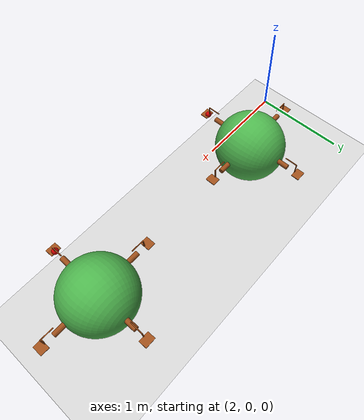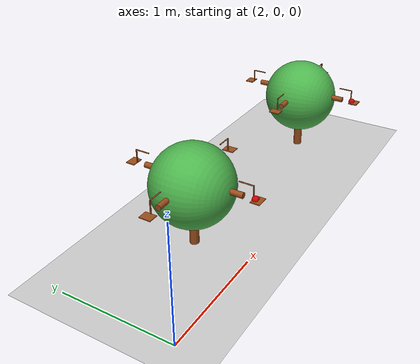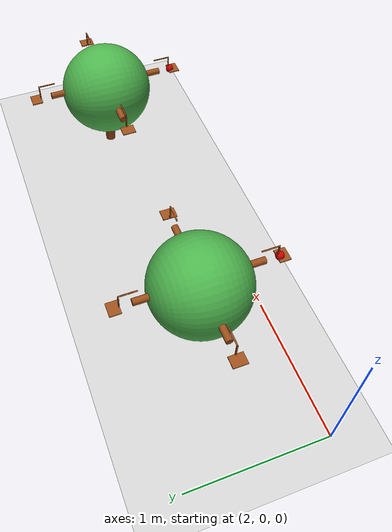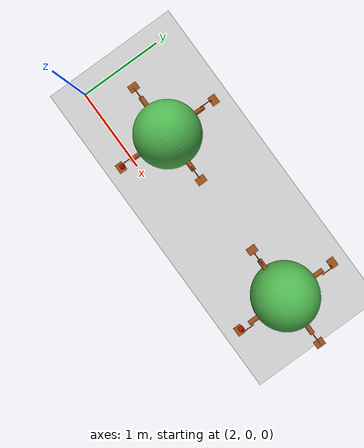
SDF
<sdf version="1.7">
 <world name="default">
  <light name="sun" type="directional">
   <pose>0 0 10 0 -0 0</pose>
   <diffuse>0.8 0.8 0.8 1</diffuse>
   <specular>0.2 0.2 0.2 1</specular>
   <attenuation>
    <range>1000</range>
    <constant>0.9</constant>
    <linear>0.01</linear>
    <quadratic>0.001</quadratic>
   </attenuation>
   <direction>-0.5 0.1 -0.9</direction>
   <spot><inner_angle>0</inner_angle><outer_angle>0</outer_angle><falloff>0</falloff></spot>
  </light>
  <model name="ground_plane">
   <static>1</static>
   <link name="link">
    <collision name="collision">
     <geometry><plane><normal>0 0 1</normal><size>100 100</size></plane></geometry>
     <surface><friction><ode><mu>100</mu><mu2>50</mu2></ode></friction></surface>
    </collision>
    <visual name="visual">
     <cast_shadows>0</cast_shadows>
     <geometry><plane><normal>0 0 1</normal><size>100 100</size></plane></geometry>
     <material>
      <script><uri>file://media/materials/scripts/gazebo.material</uri><name>Gazebo/Grey</name></script>
     </material>
    </visual>
   </link>
  </model>
  <gravity>0 0 -9.8</gravity>
  <magnetic_field>6e-06 2.3e-05 -4.2e-05</magnetic_field>
  <atmosphere type="adiabatic"/>
  <physics type="ode">
   <max_step_size>0.001</max_step_size>
   <real_time_factor>1</real_time_factor>
   <real_time_update_rate>1000</real_time_update_rate>
  </physics>
  <scene><ambient>0.4 0.4 0.4 1</ambient><background>0.7 0.7 0.7 1</background><shadows>1</shadows></scene>
  <spherical_coordinates>
   <surface_model>EARTH_WGS84</surface_model>
   <latitude_deg>0</latitude_deg>
   <longitude_deg>0</longitude_deg>
   <elevation>0</elevation>
   <heading_deg>0</heading_deg>
  </spherical_coordinates>
  <model name="tree_body_1">
   <static>1</static>
   <link name="base_link">
    <inertial>
     <pose>0 -0 0.471764 0 -0 0</pose>
     <mass>1.19801</mass>
     <inertia>
      <ixx>0.0425808</ixx>
      <ixy>1.32721e-16</ixy>
      <ixz>-1.63924e-09</ixz>
      <iyy>0.0425808</iyy>
      <iyz>-1.70022e-09</iyz>
      <izz>0.0498619</izz>
     </inertia>
    </inertial>
    <collision name="base_link_collision">
     <geometry><mesh><scale>1 1 1</scale><uri>model://tree_body/meshes/base_link.STL</uri></mesh></geometry>
    </collision>
    <collision name="base_link_fixed_joint_lump__branch1_collision_1">
     <pose>0 -0.57 0.6 1.5708 -0 0</pose>
     <geometry><mesh><scale>1 1 1</scale><uri>model://tree_body/meshes/branch1.STL</uri></mesh></geometry>
    </collision>
    <collision name="base_link_fixed_joint_lump__branch2_collision_2">
     <pose>0.57 0 0.6 1.5708 -0 1.5708</pose>
     <geometry><mesh><scale>1 1 1</scale><uri>model://tree_body/meshes/branch2.STL</uri></mesh></geometry>
    </collision>
    <collision name="base_link_fixed_joint_lump__branch3_collision_3">
     <pose>0 0.57 0.6 1.5708 -0 -3.14159</pose>
     <geometry><mesh><scale>1 1 1</scale><uri>model://tree_body/meshes/branch3.STL</uri></mesh></geometry>
    </collision>
    <collision name="base_link_fixed_joint_lump__branch4_collision_4">
     <pose>-0.57 0 0.6 1.5708 0 -1.5708</pose>
     <geometry><mesh><scale>1 1 1</scale><uri>model://tree_body/meshes/branch4.STL</uri></mesh></geometry>
    </collision>
    <collision name="base_link_fixed_joint_lump__leaves_collision_5">
     <pose>0 0 0.55 0 -0 0</pose>
     <geometry><mesh><scale>1 1 1</scale><uri>model://tree_body/meshes/leaves.STL</uri></mesh></geometry>
    </collision>
    <visual name="base_link_visual">
     <geometry><mesh><scale>1 1 1</scale><uri>model://tree_body/meshes/base_link.STL</uri></mesh></geometry>
     <material>
      <ambient>0.3 0.1 0 1</ambient>
      <diffuse>0.6 0.3 0.1 1</diffuse>
      <specular>0.1 0.1 0.1 0</specular>
      <emissive>0.05 0.02 0.01 1</emissive>
     </material>
    </visual>
    <visual name="base_link_fixed_joint_lump__branch1_visual_1">
     <pose>0 -0.57 0.6 1.5708 -0 0</pose>
     <geometry><mesh><scale>1 1 1</scale><uri>model://tree_body/meshes/branch1.STL</uri></mesh></geometry>
     <material>
      <ambient>0.3 0.1 0 1</ambient>
      <diffuse>0.6 0.3 0.1 1</diffuse>
      <specular>0.1 0.1 0.1 0</specular>
      <emissive>0.05 0.02 0.01 1</emissive>
     </material>
    </visual>
    <visual name="base_link_fixed_joint_lump__branch2_visual_2">
     <pose>0.57 0 0.6 1.5708 -0 1.5708</pose>
     <geometry><mesh><scale>1 1 1</scale><uri>model://tree_body/meshes/branch2.STL</uri></mesh></geometry>
     <material>
      <ambient>0.3 0.1 0 1</ambient>
      <diffuse>0.6 0.3 0.1 1</diffuse>
      <specular>0.1 0.1 0.1 0</specular>
      <emissive>0.05 0.02 0.01 1</emissive>
     </material>
    </visual>
    <visual name="base_link_fixed_joint_lump__branch3_visual_3">
     <pose>0 0.57 0.6 1.5708 -0 -3.14159</pose>
     <geometry><mesh><scale>1 1 1</scale><uri>model://tree_body/meshes/branch3.STL</uri></mesh></geometry>
     <material>
      <ambient>0.3 0.1 0 1</ambient>
      <diffuse>0.6 0.3 0.1 1</diffuse>
      <specular>0.1 0.1 0.1 0</specular>
      <emissive>0.05 0.02 0.01 1</emissive>
     </material>
    </visual>
    <visual name="base_link_fixed_joint_lump__branch4_visual_4">
     <pose>-0.57 0 0.6 1.5708 0 -1.5708</pose>
     <geometry><mesh><scale>1 1 1</scale><uri>model://tree_body/meshes/branch4.STL</uri></mesh></geometry>
     <material>
      <ambient>0.3 0.1 0 1</ambient>
      <diffuse>0.6 0.3 0.1 1</diffuse>
      <specular>0.1 0.1 0.1 0</specular>
      <emissive>0.05 0.02 0.01 1</emissive>
     </material>
    </visual>
    <visual name="base_link_fixed_joint_lump__leaves_visual_5">
     <pose>0 0 0.55 0 -0 0</pose>
     <geometry><mesh><scale>1 1 1</scale><uri>model://tree_body/meshes/leaves.STL</uri></mesh></geometry>
     <material>
      <ambient>0.1 0.4 0.1 1</ambient>
      <diffuse>0.3 0.7 0.3 1</diffuse>
      <specular>0.2 0.2 0.2 0</specular>
      <emissive>0.05 0.2 0.05 1</emissive>
     </material>
    </visual>
   </link>
   <frame name="branch1_joint" attached_to="base_link"><pose>0 -0.57 0.6 1.5708 -0 0</pose></frame>
   <frame name="branch1" attached_to="branch1_joint"/>
   <frame name="branch2_joint" attached_to="base_link"><pose>0.57 0 0.6 1.5708 -0 1.5708</pose></frame>
   <frame name="branch2" attached_to="branch2_joint"/>
   <frame name="branch3_joint" attached_to="base_link"><pose>0 0.57 0.6 1.5708 -0 -3.14159</pose></frame>
   <frame name="branch3" attached_to="branch3_joint"/>
   <frame name="branch4_joint" attached_to="base_link"><pose>-0.57 0 0.6 1.5708 0 -1.5708</pose></frame>
   <frame name="branch4" attached_to="branch4_joint"/>
   <frame name="leaves_joint" attached_to="base_link"><pose>0 0 0.55 0 -0 0</pose></frame>
   <frame name="leaves" attached_to="leaves_joint"/>
   <pose>3 0.5 0 0 -0 0</pose>
  </model>
  <model name="tree_body_0">
   <static>1</static>
   <link name="base_link">
    <inertial>
     <pose>0 -0 0.471764 0 -0 0</pose>
     <mass>1.19801</mass>
     <inertia>
      <ixx>0.0425808</ixx>
      <ixy>1.32721e-16</ixy>
      <ixz>-1.63924e-09</ixz>
      <iyy>0.0425808</iyy>
      <iyz>-1.70022e-09</iyz>
      <izz>0.0498619</izz>
     </inertia>
    </inertial>
    <collision name="base_link_collision">
     <geometry><mesh><scale>1 1 1</scale><uri>model://tree_body/meshes/base_link.STL</uri></mesh></geometry>
    </collision>
    <collision name="base_link_fixed_joint_lump__branch1_collision_1">
     <pose>0 -0.57 0.6 1.5708 -0 0</pose>
     <geometry><mesh><scale>1 1 1</scale><uri>model://tree_body/meshes/branch1.STL</uri></mesh></geometry>
    </collision>
    <collision name="base_link_fixed_joint_lump__branch2_collision_2">
     <pose>0.57 0 0.6 1.5708 -0 1.5708</pose>
     <geometry><mesh><scale>1 1 1</scale><uri>model://tree_body/meshes/branch2.STL</uri></mesh></geometry>
    </collision>
    <collision name="base_link_fixed_joint_lump__branch3_collision_3">
     <pose>0 0.57 0.6 1.5708 -0 -3.14159</pose>
     <geometry><mesh><scale>1 1 1</scale><uri>model://tree_body/meshes/branch3.STL</uri></mesh></geometry>
    </collision>
    <collision name="base_link_fixed_joint_lump__branch4_collision_4">
     <pose>-0.57 0 0.6 1.5708 0 -1.5708</pose>
     <geometry><mesh><scale>1 1 1</scale><uri>model://tree_body/meshes/branch4.STL</uri></mesh></geometry>
    </collision>
    <collision name="base_link_fixed_joint_lump__leaves_collision_5">
     <pose>0 0 0.55 0 -0 0</pose>
     <geometry><mesh><scale>1 1 1</scale><uri>model://tree_body/meshes/leaves.STL</uri></mesh></geometry>
    </collision>
    <visual name="base_link_visual">
     <geometry><mesh><scale>1 1 1</scale><uri>model://tree_body/meshes/base_link.STL</uri></mesh></geometry>
     <material>
      <ambient>0.3 0.1 0 1</ambient>
      <diffuse>0.6 0.3 0.1 1</diffuse>
      <specular>0.1 0.1 0.1 0</specular>
      <emissive>0.05 0.02 0.01 1</emissive>
     </material>
    </visual>
    <visual name="base_link_fixed_joint_lump__branch1_visual_1">
     <pose>0 -0.57 0.6 1.5708 -0 0</pose>
     <geometry><mesh><scale>1 1 1</scale><uri>model://tree_body/meshes/branch1.STL</uri></mesh></geometry>
     <material>
      <ambient>0.3 0.1 0 1</ambient>
      <diffuse>0.6 0.3 0.1 1</diffuse>
      <specular>0.1 0.1 0.1 0</specular>
      <emissive>0.05 0.02 0.01 1</emissive>
     </material>
    </visual>
    <visual name="base_link_fixed_joint_lump__branch2_visual_2">
     <pose>0.57 0 0.6 1.5708 -0 1.5708</pose>
     <geometry><mesh><scale>1 1 1</scale><uri>model://tree_body/meshes/branch2.STL</uri></mesh></geometry>
     <material>
      <ambient>0.3 0.1 0 1</ambient>
      <diffuse>0.6 0.3 0.1 1</diffuse>
      <specular>0.1 0.1 0.1 0</specular>
      <emissive>0.05 0.02 0.01 1</emissive>
     </material>
    </visual>
    <visual name="base_link_fixed_joint_lump__branch3_visual_3">
     <pose>0 0.57 0.6 1.5708 -0 -3.14159</pose>
     <geometry><mesh><scale>1 1 1</scale><uri>model://tree_body/meshes/branch3.STL</uri></mesh></geometry>
     <material>
      <ambient>0.3 0.1 0 1</ambient>
      <diffuse>0.6 0.3 0.1 1</diffuse>
      <specular>0.1 0.1 0.1 0</specular>
      <emissive>0.05 0.02 0.01 1</emissive>
     </material>
    </visual>
    <visual name="base_link_fixed_joint_lump__branch4_visual_4">
     <pose>-0.57 0 0.6 1.5708 0 -1.5708</pose>
     <geometry><mesh><scale>1 1 1</scale><uri>model://tree_body/meshes/branch4.STL</uri></mesh></geometry>
     <material>
      <ambient>0.3 0.1 0 1</ambient>
      <diffuse>0.6 0.3 0.1 1</diffuse>
      <specular>0.1 0.1 0.1 0</specular>
      <emissive>0.05 0.02 0.01 1</emissive>
     </material>
    </visual>
    <visual name="base_link_fixed_joint_lump__leaves_visual_5">
     <pose>0 0 0.55 0 -0 0</pose>
     <geometry><mesh><scale>1 1 1</scale><uri>model://tree_body/meshes/leaves.STL</uri></mesh></geometry>
     <material>
      <ambient>0.1 0.4 0.1 1</ambient>
      <diffuse>0.3 0.7 0.3 1</diffuse>
      <specular>0.2 0.2 0.2 0</specular>
      <emissive>0.05 0.2 0.05 1</emissive>
     </material>
    </visual>
   </link>
   <frame name="branch1_joint" attached_to="base_link"><pose>0 -0.57 0.6 1.5708 -0 0</pose></frame>
   <frame name="branch1" attached_to="branch1_joint"/>
   <frame name="branch2_joint" attached_to="base_link"><pose>0.57 0 0.6 1.5708 -0 1.5708</pose></frame>
   <frame name="branch2" attached_to="branch2_joint"/>
   <frame name="branch3_joint" attached_to="base_link"><pose>0 0.57 0.6 1.5708 -0 -3.14159</pose></frame>
   <frame name="branch3" attached_to="branch3_joint"/>
   <frame name="branch4_joint" attached_to="base_link"><pose>-0.57 0 0.6 1.5708 0 -1.5708</pose></frame>
   <frame name="branch4" attached_to="branch4_joint"/>
   <frame name="leaves_joint" attached_to="base_link"><pose>0 0 0.55 0 -0 0</pose></frame>
   <frame name="leaves" attached_to="leaves_joint"/>
   <pose>5 0.5 0 0 0 -0.001495</pose>
  </model>
  <model name="apple_body_0">
   <link name="base_link">
    <inertial>
     <mass>0.10428</mass>
     <inertia>
      <ixx>3.7428e-05</ixx>
      <ixy>-2.7676e-37</ixy>
      <ixz>3.5154e-26</ixz>
      <iyy>3.7428e-05</iyy>
      <iyz>2.8705e-10</iyz>
      <izz>4.1939e-05</izz>
     </inertia>
    </inertial>
    <collision name="base_link_collision">
     <geometry><mesh><scale>1 1 1</scale><uri>model://apple_body/meshes/base_link.STL</uri></mesh></geometry>
    </collision>
    <visual name="base_link_visual">
     <geometry><mesh><scale>1 1 1</scale><uri>model://apple_body/meshes/base_link.STL</uri></mesh></geometry>
     <material>
      <ambient>0.2 0 0 1</ambient>
      <diffuse>0.8 0 0 1</diffuse>
      <specular>0.3 0.3 0.3 0</specular>
      <emissive>0.1 0 0 1</emissive>
     </material>
    </visual>
   </link>
   <pose>4.99919 -0.04533 0.599997 1.57063 -0.070021 -0.001332</pose>
  </model>
  <model name="apple_body">
   <link name="base_link">
    <inertial>
     <mass>0.10428</mass>
     <inertia>
      <ixx>3.7428e-05</ixx>
      <ixy>-2.7676e-37</ixy>
      <ixz>3.5154e-26</ixz>
      <iyy>3.7428e-05</iyy>
      <iyz>2.8705e-10</iyz>
      <izz>4.1939e-05</izz>
     </inertia>
    </inertial>
    <collision name="base_link_collision">
     <geometry><mesh><scale>1 1 1</scale><uri>model://apple_body/meshes/base_link.STL</uri></mesh></geometry>
    </collision>
    <visual name="base_link_visual">
     <geometry><mesh><scale>1 1 1</scale><uri>model://apple_body/meshes/base_link.STL</uri></mesh></geometry>
     <material>
      <ambient>0.2 0 0 1</ambient>
      <diffuse>0.8 0 0 1</diffuse>
      <specular>0.3 0.3 0.3 0</specular>
      <emissive>0.1 0 0 1</emissive>
     </material>
    </visual>
   </link>
   <pose>3.00001 -0.051223 0.600006 1.57073 -0.113325 0.000182</pose>
  </model>
 </world>
</sdf>
